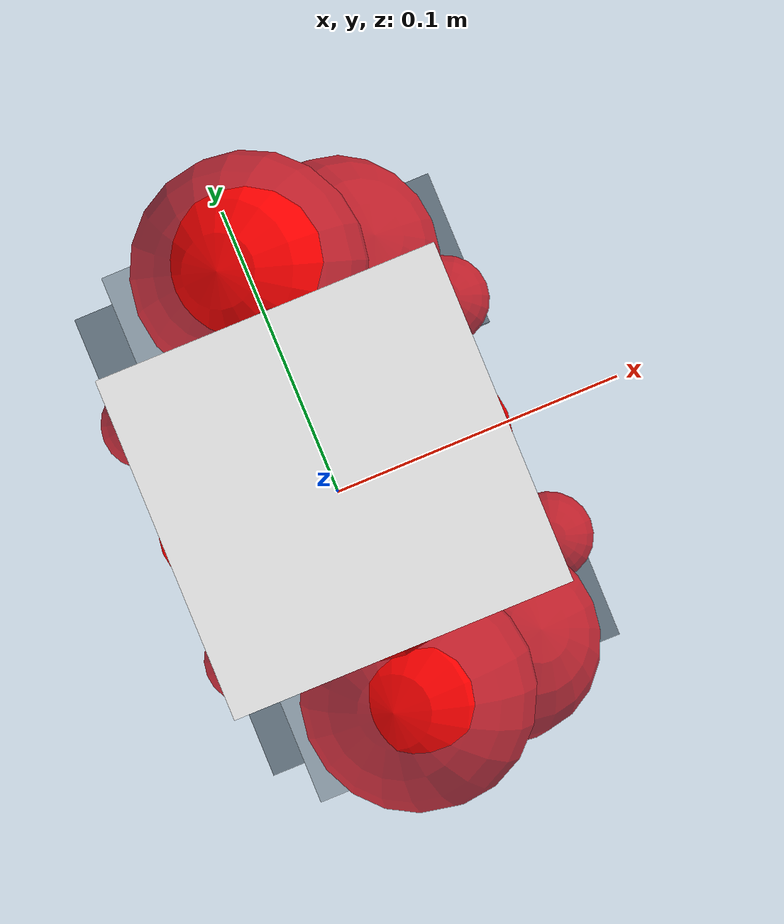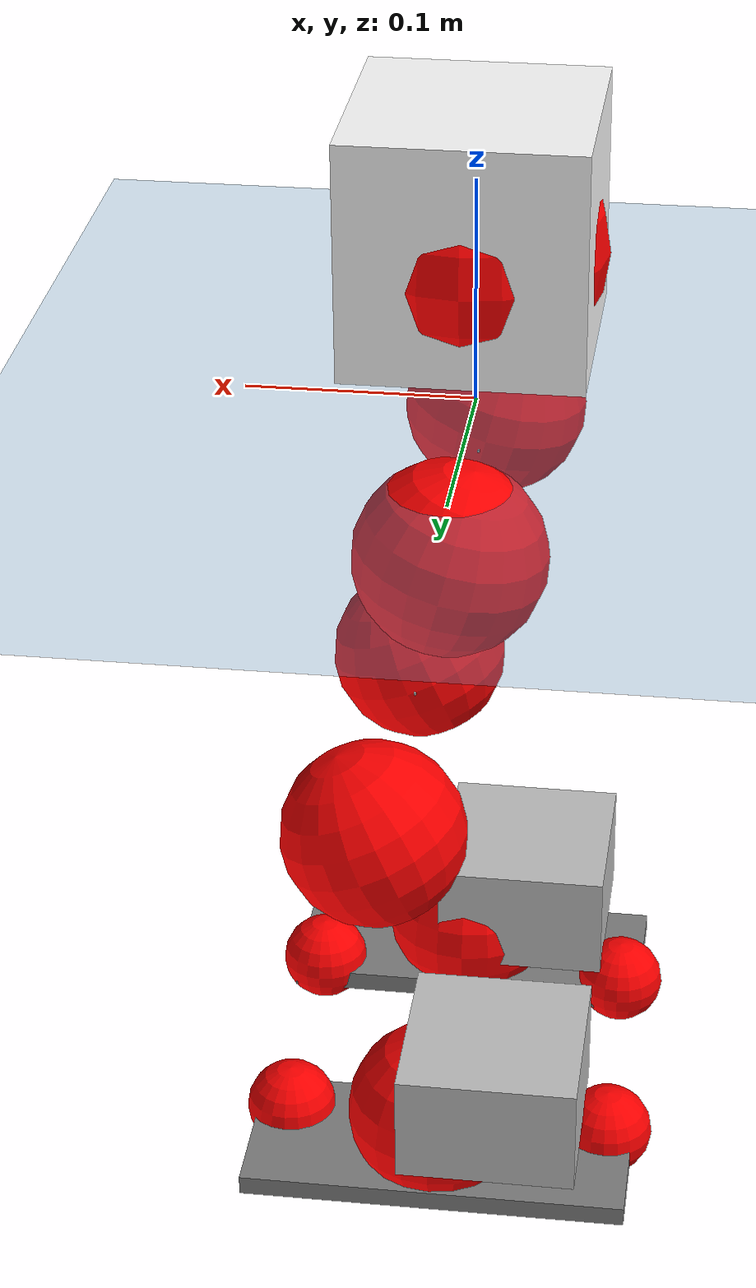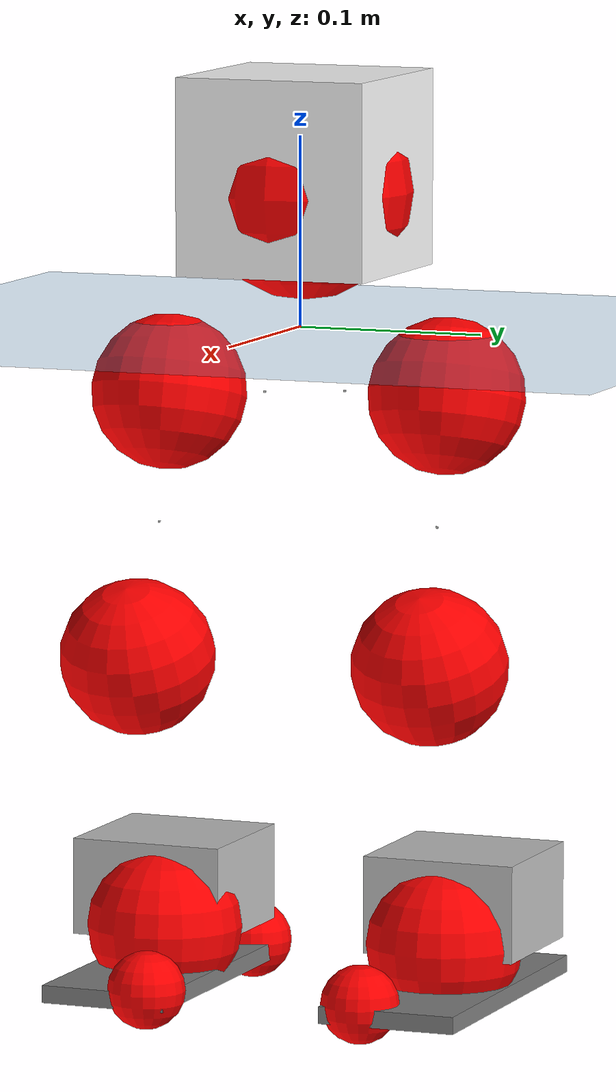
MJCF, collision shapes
<mujoco model="pi_12dof_release_v1">
  <compiler angle="radian" assetdir="assets" balanceinertia="true" inertiafromgeom="false"/>

  <option timestep="0.005" density="1.2" viscosity="2e-05"/>

  <size nkey="1"/>

  <visual>
    <quality shadowsize="8192"/>
    <map shadowclip="0.5"/>
  </visual>

  <default>
    <default class="/">
      <joint armature="0.01" damping="0.01" frictionloss="0.01"/>
      <geom contype="0" conaffinity="0" group="1" solref="-1000 -80"/>
      <site size="0.01 0.005 0.005" group="5"/>
      <general forcelimited="true" biastype="affine" gainprm="20" biasprm="0 -20 -0.5"/>
      <default class="foot">
        <geom size="0.0845 0.036 0.005" type="box" condim="6" group="4" priority="1" friction="0.9 0.2 0.2" solimp="0.015 1 0.005"/>
      </default>
      <default class="reward_collision_sphere">
        <geom group="5" rgba="1 0 0 1"/>
      </default>
    </default>
  </default>

  <asset>
    <texture type="skybox" colorspace="auto" name="//unnamed_texture_0" builtin="gradient" rgb1="0.95 0.95 0.95" rgb2="0.95 0.95 0.95" width="100" height="600"/>
    <texture type="2d" colorspace="auto" name="texplane" builtin="checker" rgb1="0.345 0.575 0.748" rgb2="0.345 0.575 0.748" markrgb="1 1 1" width="512" height="512"/>
    <material name="MatPlane" class="/" texture="texplane" texuniform="true" texrepeat="2 2" specular="0.9"/>
    <mesh name="baselink_1" class="/" file="baselink_1.STL"/>
    <mesh name="r_hip_pitch_link" class="/" file="r_hip_pitch_link.STL"/>
    <mesh name="r_hip_roll_link" class="/" file="r_hip_roll_link.STL"/>
    <mesh name="r_thigh_link" class="/" file="r_thigh_link.STL"/>
    <mesh name="r_calf_link" class="/" file="r_calf_link.STL"/>
    <mesh name="r_ankle_pitch_link" class="/" file="r_ankle_pitch_link.STL"/>
    <mesh name="r_ankle_roll_link" class="/" file="r_ankle_roll_link.STL"/>
    <mesh name="l_hip_pitch_link" class="/" file="l_hip_pitch_link.STL"/>
    <mesh name="l_hip_roll_link" class="/" file="l_hip_roll_link.STL"/>
    <mesh name="l_thigh_link" class="/" file="l_thigh_link.STL"/>
    <mesh name="l_calf_link" class="/" file="l_calf_link.STL"/>
    <mesh name="l_ankle_pitch_link" class="/" file="l_ankle_pitch_link.STL"/>
    <mesh name="l_ankle_roll_link" class="/" file="l_ankle_roll_link.STL"/>
  </asset>

  <worldbody>
    <geom name="floor" class="/" size="100 100 0.125" type="plane" group="0" material="MatPlane"/>
    <light name="toplight_shadow" class="/" pos="0 0 5" dir="0.0990148 0.0990148 -0.990148" type="directional" ambient="0.04 0.04 0.04" diffuse="0.55 0.55 0.55" specular="0.12 0.12 0.12"/>
    <light name="toplight_fill" class="/" pos="0 0 5" dir="0.0990148 0.0990148 -0.990148" type="directional" castshadow="false" ambient="0.04 0.04 0.04" diffuse="0.3 0.3 0.3" specular="0.08 0.08 0.08"/>
    <body name="trunk" pos="0.000384237 0.0026766 0.000651084" quat="1 0.00036166 0.000150553 -0.000783126">
      <inertial pos="0.00304171 -0.00222563 0.040585" quat="0.687031 0.00891675 0.0165831 0.726384" mass="2.42624" diaginertia="0.0161712 0.00866007 0.00433666"/>
      <joint name="//unnamed_joint_0" type="free"/>
      <geom name="//unnamed_geom_1" class="/" type="mesh" density="0" rgba="1 1 1 1" mesh="baselink_1"/>
      <geom name="//unnamed_geom_2" class="/" size="0.0516009 0.0516009 0.0516009" pos="0 0 0.0807855" type="box" rgba="1 1 1 1"/>
      <geom name="//unnamed_geom_3" class="reward_collision_sphere" size="0.0567609" pos="0 0 0.0706873"/>
      <site name="imu" class="/" pos="0.0102525 -0.00183246 0.00352103" size="0.0103202"/>
      <camera name="track" class="/" pos="0 -1.96866 0" quat="0.707107 0.707107 0 0" mode="trackcom"/>
      <camera name="ego_camera" class="/" pos="0.0826426 0 0.181767" quat="-0.5 -0.5 0.5 0.5"/>
      <body name="r_hip_pitch_link" pos="0.000494997 -0.0225172 -0.0356616" quat="0.992164 0.000191953 -0.124945 -0.000149779">
        <inertial pos="0.00132522 -0.0580364 -2.42088e-05" quat="-0.0192339 0.705814 -0.0283467 0.707569" mass="0.40407" diaginertia="0.000175423 8.95215e-05 8.81476e-05"/>
        <joint name="r_hip_pitch_joint" class="/" pos="0 0 0" axis="-0.00212106 -0.999996 -0.00160748" range="-1.75538 1.29368" armature="0.0104135" damping="0.00839324" frictionloss="0.0101739"/>
        <geom name="//unnamed_geom_4" class="/" type="mesh" density="0" rgba="0.75294 0.75294 0.75294 1" mesh="r_hip_pitch_link"/>
        <geom name="//unnamed_geom_5" class="/" size="0.000516009 0.000516009 0.000516009" type="box" rgba="0.75294 0.75294 0.75294 1"/>
        <body name="r_hip_roll_link" pos="-0.00214138 -0.0549586 -0.00200423" quat="0.999999 -0.00143535 4.6398e-05 -0.000194113">
          <inertial pos="-0.00159991 -5.11022e-05 -0.0602411" quat="0.707176 -0.0876503 -0.0717751 0.697902" mass="0.409042" diaginertia="0.000519757 0.000248433 0.000132215"/>
          <joint name="r_hip_roll_joint" class="/" pos="0 0 0" axis="-0.999981 -0.00621536 -0.000347761" stiffness="0.000934361" range="-0.112919 0.509316" armature="0.0116597" damping="0" frictionloss="0.00934753"/>
          <geom name="//unnamed_geom_6" class="/" type="mesh" density="0" rgba="0.75294 0.75294 0.75294 1" mesh="r_hip_roll_link"/>
          <geom name="//unnamed_geom_7" class="/" size="0.000516009 0.000516009 0.000516009" type="box" rgba="0.75294 0.75294 0.75294 1"/>
          <geom name="//unnamed_geom_8" class="reward_collision_sphere" size="0.0412807"/>
          <body name="r_thigh_link" pos="6.49782e-05 0.00138778 -0.069204" quat="1 -0.000397297 -0.000740514 4.09169e-05">
            <inertial pos="0.00303403 -0.00131531 -0.0485036" quat="0.736888 0.676014 -0.000911251 0.000498403" mass="0.131719" diaginertia="0.000205008 9.03305e-05 6.1972e-05"/>
            <joint name="r_thigh_joint" class="/" pos="0 0 0" axis="0.00792628 0.0119611 -0.999897" stiffness="0.0120462" range="-0.263521 0.583721" armature="0.0104113" damping="0.00195595" frictionloss="0.00889081"/>
            <geom name="//unnamed_geom_9" class="/" type="mesh" density="0" rgba="0.75294 0.75294 0.75294 1" mesh="r_thigh_link"/>
            <geom name="//unnamed_geom_10" class="/" size="0.000516009 0.000516009 0.000516009" type="box" rgba="0.75294 0.75294 0.75294 1"/>
            <body name="r_calf_link" pos="0.00123564 -0.00427203 -0.0718649" quat="0.947673 -0.000355257 0.319244 -0.000209299">
              <inertial pos="-0.00106934 0.00160837 -0.0702881" quat="0.999846 -0.00461466 0.0010448 0.0168799" mass="0.894064" diaginertia="0.0057425 0.00312307 0.000182761"/>
              <joint name="r_calf_joint" class="/" pos="0 0 0" axis="0.0013259 -0.999973 -0.00727135" range="-1.64203 0.652526" armature="0.0116279" damping="0.00181786" frictionloss="0.00992195"/>
              <geom name="//unnamed_geom_11" class="/" type="mesh" density="0" rgba="0.75294 0.75294 0.75294 1" mesh="r_calf_link"/>
              <geom name="//unnamed_geom_12" class="/" size="0.000516009 0.000516009 0.000516009" type="box" rgba="0.75294 0.75294 0.75294 1"/>
              <geom name="//unnamed_geom_13" class="reward_collision_sphere" size="0.0412807"/>
              <body name="r_ankle_pitch_link" pos="4.13518e-05 -0.00153985 -0.139163" quat="0.980066 -8.64031e-05 -0.198671 -8.19772e-05">
                <inertial pos="0.00253518 0.00163404 0.00150703" quat="0.00278964 0.708512 -0.00219221 0.70569" mass="0.199185" diaginertia="0.000503827 0.000213136 0.000129949"/>
                <joint name="r_ankle_pitch_joint" class="/" pos="0 0 0" axis="-0.0121114 -0.999921 0.00349469" stiffness="0.00661143" range="-1.24191 0.502032" armature="0.00989187" damping="0.0212649" frictionloss="0.00931317"/>
                <geom name="//unnamed_geom_14" class="/" type="mesh" density="0" rgba="0.75294 0.75294 0.75294 1" mesh="r_ankle_pitch_link"/>
                <geom name="//unnamed_geom_15" class="/" size="0.0402487 0.0412807 0.0258004" type="box" rgba="0.75294 0.75294 0.75294 1"/>
                <body name="r_ankle_roll_link" pos="0.082709 0.00600057 0.000582971" quat="1 -0.000359112 -0.000337539 -8.7208e-05">
                  <inertial pos="-0.0280474 -0.00208523 -0.0136351" quat="0.562916 0.431929 0.430579 0.557821" mass="0.558941" diaginertia="0.00188696 0.000955 0.000291542"/>
                  <joint name="r_ankle_roll_joint" class="/" pos="0 0 0" axis="-0.999984 -0.00218153 0.00516532" range="-0.150123 0.140757" armature="0.0113073" damping="0.00250475" frictionloss="0.00997713"/>
                  <geom name="//unnamed_geom_16" class="/" type="mesh" density="0" rgba="0.75294 0.75294 0.75294 1" mesh="r_ankle_roll_link"/>
                  <geom name="//unnamed_geom_17" class="/" type="mesh" rgba="0.75294 0.75294 0.75294 1" mesh="r_ankle_roll_link"/>
                  <geom name="right_foot" class="foot" size="0.0856458 0.0340879 0.00467065" pos="-0.056197 0 -0.044432"/>
                  <geom name="//unnamed_geom_19" class="reward_collision_sphere" size="0.0412807" pos="-0.0550951 0 -0.0201964"/>
                  <geom name="//unnamed_geom_20" class="reward_collision_sphere" size="0.0206403" pos="0.0165285 0.0196866 -0.0403927"/>
                  <geom name="//unnamed_geom_21" class="reward_collision_sphere" size="0.0206403" pos="-0.132228 0.0196866 -0.0403927"/>
                  <site name="right_foot" class="foot" pos="-0.056197 0 -0.044432" size="0.0103202"/>
                </body>
              </body>
            </body>
          </body>
        </body>
      </body>
      <body name="l_hip_pitch_link" pos="-0.00251413 0.0212506 -0.0335902" quat="0.992129 -0.000142086 -0.125221 0.000343887">
        <inertial pos="0.000547748 0.0550446 0.00019228" quat="-0.0380784 0.70641 0.0264298 0.706284" mass="0.413095" diaginertia="0.000203095 9.75349e-05 0.000104576"/>
        <joint name="l_hip_pitch_joint" class="/" pos="0 0 0" axis="-0.00250393 0.99994 0.0106753" stiffness="0.0056241" range="-1.24635 1.76481" armature="0.0107173" damping="0.0223058" frictionloss="0.0117442"/>
        <geom name="//unnamed_geom_22" class="/" type="mesh" density="0" rgba="0.75294 0.75294 0.75294 1" mesh="l_hip_pitch_link"/>
        <geom name="//unnamed_geom_23" class="/" size="0.000516009 0.000516009 0.000516009" type="box" rgba="0.75294 0.75294 0.75294 1"/>
        <body name="l_hip_roll_link" pos="0.00286997 0.0579525 -0.000468347" quat="0.999999 -0.000655025 0.000733836 0.000996953">
          <inertial pos="0.00102116 -0.000646709 -0.0623618" quat="0.704104 -0.0714633 -0.0760185 0.70239" mass="0.444987" diaginertia="0.000539152 0.000260001 0.000140524"/>
          <joint name="l_hip_roll_joint" class="/" pos="0 0 0" axis="-0.999927 -0.0111776 0.00451389" range="-0.50742 0.169432" armature="0.0109291" damping="0" frictionloss="0.00898207"/>
          <geom name="//unnamed_geom_24" class="/" type="mesh" density="0" rgba="0.75294 0.75294 0.75294 1" mesh="l_hip_roll_link"/>
          <geom name="//unnamed_geom_25" class="/" size="0.000516009 0.000516009 0.000516009" type="box" rgba="0.75294 0.75294 0.75294 1"/>
          <geom name="//unnamed_geom_26" class="reward_collision_sphere" size="0.0412807"/>
          <body name="l_thigh_link" pos="-0.00206194 0.000444055 -0.0684686" quat="1 -0.000409796 -0.000170893 0.000490718">
            <inertial pos="0.00101337 -0.0018124 -0.0499161" quat="0.66665 0.745344 -0.00261882 0.00575956" mass="0.123522" diaginertia="0.00020503 8.43056e-05 5.9999e-05"/>
            <joint name="l_thigh_joint" class="/" pos="0 0 0" axis="-0.0104147 0.00354306 -0.999939" range="-0.593048 0.298" armature="0.0102748" damping="0.002401" frictionloss="0.0101671"/>
            <geom name="//unnamed_geom_27" class="/" type="mesh" density="0" rgba="0.75294 0.75294 0.75294 1" mesh="l_thigh_link"/>
            <geom name="//unnamed_geom_28" class="/" size="0.000516009 0.000516009 0.000516009" type="box" rgba="0.75294 0.75294 0.75294 1"/>
            <body name="l_calf_link" pos="0.000257568 0.00310494 -0.072719" quat="0.947985 0.000527661 0.318315 0.000398304">
              <inertial pos="0.00239166 0.00600983 -0.0705934" quat="0.999984 0.000467035 0.000537655 0.00554859" mass="0.879982" diaginertia="0.00582894 0.00328295 0.000186379"/>
              <joint name="l_calf_joint" class="/" pos="0 0 0" axis="-0.00135096 0.999999 0.000528511" range="-0.608657 1.70572" armature="0.0103417" damping="0.0048415" frictionloss="0.009802"/>
              <geom name="//unnamed_geom_29" class="/" type="mesh" density="0" rgba="0.75294 0.75294 0.75294 1" mesh="l_calf_link"/>
              <geom name="//unnamed_geom_30" class="/" size="0.000516009 0.000516009 0.000516009" type="box" rgba="0.75294 0.75294 0.75294 1"/>
              <geom name="//unnamed_geom_31" class="reward_collision_sphere" size="0.0412807"/>
              <body name="l_ankle_pitch_link" pos="0.00118441 -0.000390326 -0.141494" quat="0.979806 0.000103588 -0.19995 0.000279963">
                <inertial pos="0.00779482 -0.000181001 0.00193575" quat="-0.000512744 0.710728 -0.00277619 0.703461" mass="0.187745" diaginertia="0.000502203 0.00020624 0.000122449"/>
                <joint name="l_ankle_pitch_joint" class="/" pos="0 0 0" axis="0.00268275 0.999917 0.0126097" stiffness="0.00925252" range="-0.46245 1.34947" armature="0.00911773" damping="0.00411827" frictionloss="0.0109208"/>
                <geom name="//unnamed_geom_32" class="/" type="mesh" density="0" rgba="0.75294 0.75294 0.75294 1" mesh="l_ankle_pitch_link"/>
                <geom name="//unnamed_geom_33" class="/" size="0.0402487 0.0412807 0.0258004" type="box" rgba="0.75294 0.75294 0.75294 1"/>
                <body name="l_ankle_roll_link" pos="0.0812457 -0.00123298 -0.000309893" quat="1 -8.1457e-06 0.000230582 -0.0003256">
                  <inertial pos="-0.0268533 0.00127117 -0.0149902" quat="0.561267 0.432802 0.434245 0.555962" mass="0.578757" diaginertia="0.00179396 0.000965081 0.000300262"/>
                  <joint name="l_ankle_roll_joint" class="/" pos="0 0 0" axis="-0.999929 0.011384 0.00344794" range="-0.123018 0.105393" armature="0.0105533" damping="0.00806609" frictionloss="0.0105997"/>
                  <geom name="//unnamed_geom_34" class="/" type="mesh" density="0" rgba="0.75294 0.75294 0.75294 1" mesh="l_ankle_roll_link"/>
                  <geom name="//unnamed_geom_35" class="/" type="mesh" rgba="0.75294 0.75294 0.75294 1" mesh="l_ankle_roll_link"/>
                  <geom name="left_foot" class="foot" size="0.087812 0.0368902 0.00457027" pos="-0.056197 0 -0.044432"/>
                  <geom name="//unnamed_geom_37" class="reward_collision_sphere" size="0.0412807" pos="-0.0550951 0 -0.0201964"/>
                  <geom name="//unnamed_geom_38" class="reward_collision_sphere" size="0.0206403" pos="0.0165285 -0.0196866 -0.0403927"/>
                  <geom name="//unnamed_geom_39" class="reward_collision_sphere" size="0.0206403" pos="-0.132228 -0.0196866 -0.0403927"/>
                  <site name="left_foot" class="foot" pos="-0.056197 0 -0.044432" size="0.0103202"/>
                </body>
              </body>
            </body>
          </body>
        </body>
      </body>
    </body>
  </worldbody>

  <contact>
    <pair class="/" geom1="floor" geom2="right_foot" name="//unnamed_contact_1"/>
    <pair class="/" geom1="floor" geom2="left_foot" name="//unnamed_contact_0"/>
  </contact>

  <actuator>
    <general name="r_hip_pitch_joint" class="/" joint="r_hip_pitch_joint" forcerange="-24.015 24.015" gainprm="20.6112" biasprm="0 -20.6112 -0.503299"/>
    <general name="r_hip_roll_joint" class="/" joint="r_hip_roll_joint" forcerange="-21.7616 21.7616" gainprm="20.6112" biasprm="0 -20.6112 -0.503299"/>
    <general name="r_thigh_joint" class="/" joint="r_thigh_joint" forcerange="-19.5878 19.5878" gainprm="20.6112" biasprm="0 -20.6112 -0.503299"/>
    <general name="r_calf_joint" class="/" joint="r_calf_joint" forcerange="-20.9535 20.9535" gainprm="20.6112" biasprm="0 -20.6112 -0.503299"/>
    <general name="r_ankle_pitch_joint" class="/" joint="r_ankle_pitch_joint" forcerange="-20.0319 20.0319" gainprm="20.6112" biasprm="0 -20.6112 -0.503299"/>
    <general name="r_ankle_roll_joint" class="/" joint="r_ankle_roll_joint" forcerange="-23.4614 23.4614" gainprm="20.6112" biasprm="0 -20.6112 -0.503299"/>
    <general name="l_hip_pitch_joint" class="/" joint="l_hip_pitch_joint" forcerange="-21.4829 21.4829" gainprm="20.6112" biasprm="0 -20.6112 -0.503299"/>
    <general name="l_hip_roll_joint" class="/" joint="l_hip_roll_joint" forcerange="-20.892 20.892" gainprm="20.6112" biasprm="0 -20.6112 -0.503299"/>
    <general name="l_thigh_joint" class="/" joint="l_thigh_joint" forcerange="-23.9133 23.9133" gainprm="20.6112" biasprm="0 -20.6112 -0.503299"/>
    <general name="l_calf_joint" class="/" joint="l_calf_joint" forcerange="-21.6283 21.6283" gainprm="20.6112" biasprm="0 -20.6112 -0.503299"/>
    <general name="l_ankle_pitch_joint" class="/" joint="l_ankle_pitch_joint" forcerange="-21.713 21.713" gainprm="20.6112" biasprm="0 -20.6112 -0.503299"/>
    <general name="l_ankle_roll_joint" class="/" joint="l_ankle_roll_joint" forcerange="-23.7296 23.7296" gainprm="20.6112" biasprm="0 -20.6112 -0.503299"/>
  </actuator>

  <sensor>
    <gyro site="imu" name="imu_angular_velocity"/>
    <velocimeter site="imu" name="imu_linear_velocity"/>
    <framelinvel objtype="site" objname="left_foot" name="left_foot_global_linear_velocity"/>
    <framelinvel objtype="site" objname="right_foot" name="right_foot_global_linear_velocity"/>
  </sensor>

  <keyframe>
    <key name="home" qpos="0 0 0.291 1 0 0 0 0.4 0 0 -0.8 0.4 0 -0.4 0 0 0.8 -0.4 0"/>
  </keyframe>
</mujoco>
